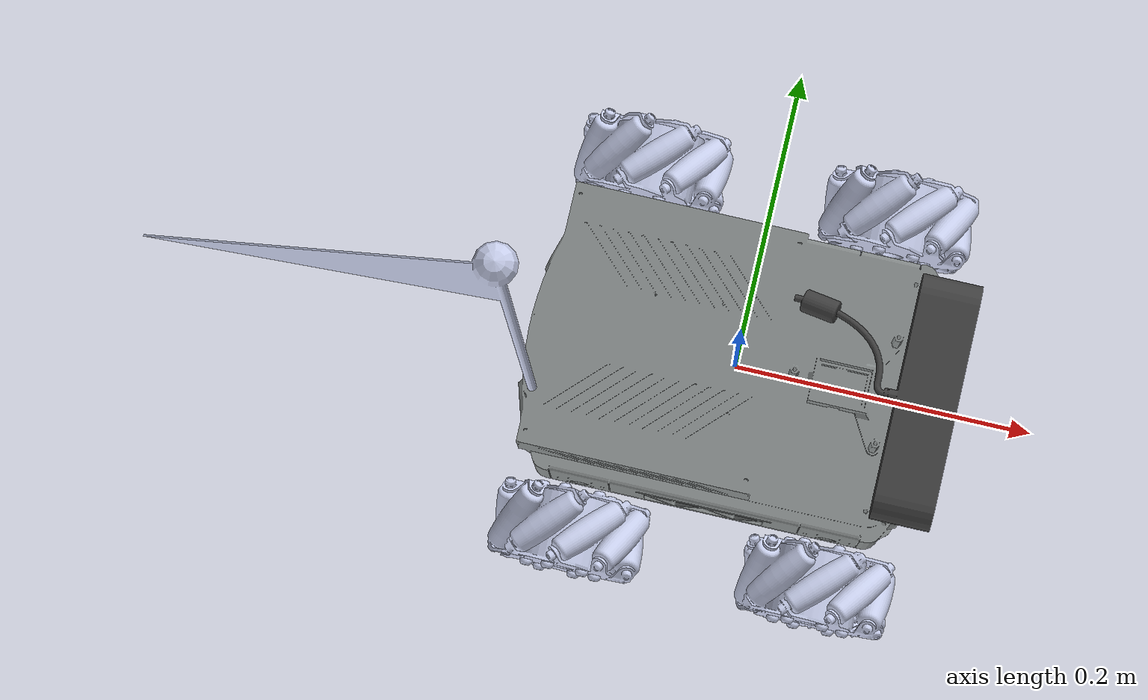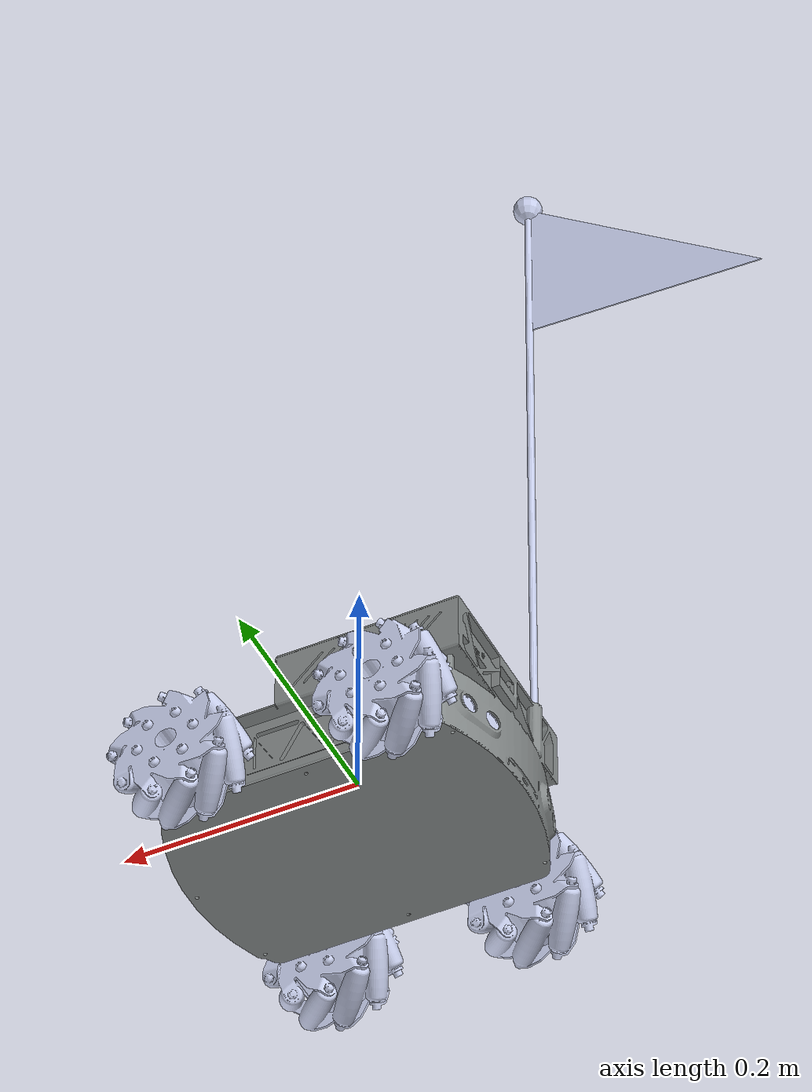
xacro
<?xml version="1.0" encoding="utf-8"?>
<robot
  name="robot_base" xmlns:xacro="http://www.ros.org/wiki/xacro">
  <xacro:property name="radius" value="0.055" />
  <xacro:property name="length" value="0.05" />
  <xacro:property name="wheel_orientation" value="1 0 0" />
  <xacro:property name="collision_transform" value="0 1.57079632679 1.57079632679" />

  <link
    name="base_link">
    <inertial>
      <origin
        xyz="-0.00910410219928872 -9.31202386654388E-05 -0.00269627899619879"
        rpy="0 0 0" />
      <mass
        value="2.54161575728203" />
      <inertia
        ixx="0.00900908568706438"
        ixy="-1.49036665189052E-06"
        ixz="0.000180180089420441"
        iyy="0.0120513643006957"
        iyz="-7.98162115966032E-07"
        izz="0.0202435224080604" />
    </inertial>
    <visual>
      <origin
        xyz="0 0 0"
        rpy="0 0 0" />
      <geometry>
        <mesh
          filename="package://mirte_description/meshes/base_link.STL" />
      </geometry>
      <material
        name="">
        <color
          rgba="0.529411764705882 0.549019607843137 0.549019607843137 1" />
      </material>
    </visual>
    <collision>
      <origin
        xyz="0 0 0"
        rpy="0 0 0" />
      <geometry>
        <mesh
          filename="package://mirte_description/meshes/base_link.STL" />
      </geometry>
    </collision>
  </link>

  <link
    name="front_left_wheel_link">
    <inertial>
      <origin
        xyz="-1.12107378935633E-10 6.41072041116797E-05 2.92491780795601E-10"
        rpy="0 0 0" />
      <mass
        value="0.266614983225976" />
      <inertia
        ixx="8.05457942774812E-05"
        ixy="-1.2260463258983E-14"
        ixz="1.9673439489928E-15"
        iyy="9.31956038960015E-05"
        iyz="-9.68884941818333E-15"
        izz="8.05457942705124E-05" />
    </inertial>
    <visual>
      <origin
        xyz="0 0 0"
        rpy="0 0 0" />
      <geometry>
        <mesh
          filename="package://mirte_description/meshes/front_left_wheel_link.STL" />
      </geometry>
      <material
        name="">
        <color
          rgba="0.792156862745098 0.819607843137255 0.933333333333333 1" />
      </material>
    </visual>
    <collision>
      <origin
        xyz="0 0 0"
        rpy="${collision_transform}" />
      <geometry>
        <cylinder radius="${radius}" length="${length}" />
      </geometry>
    </collision>
  </link>
  <joint
    name="front_left_wheel_joint"
    type="continuous">
    <origin
      xyz="0.085 0.128 -0.0454999999999998"
      rpy="0 0 0" />
    <parent
      link="base_link" />
    <child
      link="front_left_wheel_link" />
    <axis
      xyz="0 1 0" />
  </joint>
  <link
    name="front_right_wheel_link">
    <inertial>
      <origin
        xyz="-1.9000166717742E-10 6.41072041136226E-05 2.1252127835325E-10"
        rpy="0 0 0" />
      <mass
        value="0.266614983226051" />
      <inertia
        ixx="8.05457942757E-05"
        ixy="-7.69167351689639E-14"
        ixz="-4.58661949809919E-15"
        iyy="9.31956038947893E-05"
        iyz="-9.60111009267714E-15"
        izz="8.05457942710754E-05" />
    </inertial>
    <visual>
      <origin
        xyz="0 0 0"
        rpy="0 0 0" />
      <geometry>
        <mesh
          filename="package://mirte_description/meshes/front_right_wheel_link.STL" />
      </geometry>
      <material
        name="">
        <color
          rgba="0.792156862745098 0.819607843137255 0.933333333333333 1" />
      </material>
    </visual>
    <collision>
      <origin
        xyz="0 0 0"
        rpy="${collision_transform}" />
      <geometry>
        <cylinder radius="${radius}" length="${length}" />
      </geometry>
    </collision>
  </link>
  <joint
    name="front_right_wheel_joint"
    type="continuous">
    <origin
      xyz="0.085 -0.128 -0.0454999999999999"
      rpy="0 0 0" />
    <parent
      link="base_link" />
    <child
      link="front_right_wheel_link" />
    <axis
      xyz="0 1 0" />
  </joint>
  <link
    name="rear_left_wheel_link">
    <inertial>
      <origin
        xyz="-1.90001639421844E-10 6.41072041137336E-05 2.12521299169932E-10"
        rpy="0 0 0" />
      <mass
        value="0.266614983226051" />
      <inertia
        ixx="8.05457942756755E-05"
        ixy="-7.6904280182912E-14"
        ixz="-4.57395497910921E-15"
        iyy="9.31956038947575E-05"
        iyz="-9.59312938568377E-15"
        izz="8.05457942710471E-05" />
    </inertial>
    <visual>
      <origin
        xyz="0 0 0"
        rpy="0 0 0" />
      <geometry>
        <mesh
          filename="package://mirte_description/meshes/rear_left_wheel_link.STL" />
      </geometry>
      <material
        name="">
        <color
          rgba="0.792156862745098 0.819607843137255 0.933333333333333 1" />
      </material>
    </visual>
    <collision>
      <origin
        xyz="0 0 0"
        rpy="${collision_transform}" />
      <geometry>
        <cylinder radius="${radius}" length="${length}" />
      </geometry>
    </collision>
  </link>
  <joint
    name="rear_left_wheel_joint"
    type="continuous">
    <origin
      xyz="-0.0849999999999993 0.128 -0.045500000000002"
      rpy="0 0 0" />
    <parent
      link="base_link" />
    <child
      link="rear_left_wheel_link" />
    <axis
      xyz="0 1 0" />
  </joint>
  <link
    name="rear_right_wheel_link">
    <inertial>
      <origin
        xyz="-1.00091421262327E-10 6.41072041089319E-05 2.94731128391845E-10"
        rpy="0 0 0" />
      <mass
        value="0.26661498322592" />
      <inertia
        ixx="8.05457942778204E-05"
        ixy="-1.26520007959427E-14"
        ixz="4.82090522465438E-17"
        iyy="9.3195603896201E-05"
        iyz="-1.75713132076445E-14"
        izz="8.05457942703286E-05" />
    </inertial>
    <visual>
      <origin
        xyz="0 0 0"
        rpy="0 0 0" />
      <geometry>
        <mesh
          filename="package://mirte_description/meshes/rear_right_wheel_link.STL" />
      </geometry>
      <material
        name="">
        <color
          rgba="0.792156862745098 0.819607843137255 0.933333333333333 1" />
      </material>
    </visual>
    <collision>
      <origin
        xyz="0 0 0"
        rpy="${collision_transform}" />
      <geometry>
        <cylinder radius="${radius}" length="${length}" />
      </geometry>
    </collision>
  </link>
  <joint
    name="rear_right_wheel_joint"
    type="continuous">
    <origin
      xyz="-0.0850000000000007 -0.128 -0.0454999999999994"
      rpy="0 0 0" />
    <parent
      link="base_link" />
    <child
      link="rear_right_wheel_link" />
    <axis
      xyz="0 1 0" />
  </joint>
  <link
    name="camera_link">
    <inertial>
      <origin
        xyz="-0.0222605569788096 0.00132191548038024 -0.00039200722199239"
        rpy="0 0 0" />
      <mass
        value="0.188133920336356" />
      <inertia
        ixx="0.00040830401695793"
        ixy="1.91366259472818E-05"
        ixz="-4.27256160719641E-06"
        iyy="6.91459456639027E-05"
        iyz="2.54332844338714E-06"
        izz="0.000449074814854817" />
    </inertial>
    <visual>
      <origin
        xyz="0 0 0"
        rpy="0 0 0" />
      <geometry>
        <mesh
          filename="package://mirte_description/meshes/camera_link.STL" />
      </geometry>
      <material
        name="">
        <color
          rgba="0.250980392156863 0.250980392156863 0.250980392156863 1" />
      </material>
    </visual>
    <collision>
      <origin
        xyz="0 0 0"
        rpy="0 0 0" />
      <geometry>
        <mesh
          filename="package://mirte_description/meshes/camera_link.STL" />
      </geometry>
    </collision>
  </link>
  <joint
    name="camera_joint"
    type="fixed">
    <origin
      xyz="0.146658788505756 0 0.0426999999999987"
      rpy="0 0 0" />
    <parent
      link="base_link" />
    <child
      link="camera_link" />
    <axis
      xyz="0 0 0" />
  </joint>
  <link
    name="lidar_link">
    <inertial>
      <origin
        xyz="-3.97749846947626E-10 -9.543860877243E-05 -0.0118651639742243"
        rpy="0 0 0" />
      <mass
        value="0.100511981883415" />
      <inertia
        ixx="3.39518063996325E-05"
        ixy="-2.92284267049194E-13"
        ixz="1.62111209504698E-12"
        iyy="3.44778101670497E-05"
        iyz="-1.1815579647801E-07"
        izz="4.1935853096105E-05" />
    </inertial>
    <visual>
      <origin
        xyz="0 0 0"
        rpy="0 0 0" />
      <geometry>
        <mesh
          filename="package://mirte_description/meshes/lidar_link.STL" />
      </geometry>
      <material
        name="">
        <color
          rgba="0.501960784313725 0.501960784313725 0.501960784313725 1" />
      </material>
    </visual>
    <collision>
      <origin
        xyz="0 0 0"
        rpy="0 0 0" />
      <geometry>
        <mesh
          filename="package://mirte_description/meshes/lidar_link.STL" />
      </geometry>
    </collision>
  </link>
  <joint
    name="lidar_joint"
    type="fixed">
    <origin
      xyz="0.1005 0 0.0072113248654052"
      rpy="0 0 0" />
    <parent
      link="base_link" />
    <child
      link="lidar_link" />
    <axis
      xyz="0 0 0" />
  </joint>
  <link
    name="front_right_ultrasound_link">
    <inertial>
      <origin
        xyz="4.30733527063271E-05 0.00367564883489799 6.9913657863175E-05"
        rpy="0 0 0" />
      <mass
        value="0.00383513951999244" />
      <inertia
        ixx="1.59365628586767E-07"
        ixy="8.54250314742398E-10"
        ixz="-3.40905422018182E-09"
        iyy="7.6875152346034E-07"
        iyz="-2.65062440645524E-09"
        izz="7.26221149125632E-07" />
    </inertial>
    <visual>
      <origin
        xyz="0 0 0"
        rpy="0 0 0" />
      <geometry>
        <mesh
          filename="package://mirte_description/meshes/front_right_ultrasound_link.STL" />
      </geometry>
      <material
        name="">
        <color
          rgba="0.792156862745098 0.819607843137255 0.933333333333333 1" />
      </material>
    </visual>
    <collision>
      <origin
        xyz="0 0 0"
        rpy="0 0 0" />
      <geometry>
        <mesh
          filename="package://mirte_description/meshes/front_right_ultrasound_link.STL" />
      </geometry>
    </collision>
  </link>
  <joint
    name="front_right_ultrasound_joint"
    type="fixed">
    <origin
      xyz="0.120282421780502 -0.05297775289576 -0.031"
      rpy="0 0 -1.86750229963393" />
    <parent
      link="base_link" />
    <child
      link="front_right_ultrasound_link" />
    <axis
      xyz="0 0 0" />
  </joint>
  <link
    name="front_left_ultrasound_link">
    <inertial>
      <origin
        xyz="-4.30733527062924E-05 -0.00367564883489804 6.99136578631437E-05"
        rpy="0 0 0" />
      <mass
        value="0.00383513951999246" />
      <inertia
        ixx="1.59365628586768E-07"
        ixy="8.54250314742599E-10"
        ixz="3.40905422018193E-09"
        iyy="7.68751523460337E-07"
        iyz="2.65062440645509E-09"
        izz="7.26221149125628E-07" />
    </inertial>
    <visual>
      <origin
        xyz="0 0 0"
        rpy="0 0 0" />
      <geometry>
        <mesh
          filename="package://mirte_description/meshes/front_left_ultrasound_link.STL" />
      </geometry>
      <material
        name="">
        <color
          rgba="0.792156862745098 0.819607843137255 0.933333333333333 1" />
      </material>
    </visual>
    <collision>
      <origin
        xyz="0 0 0"
        rpy="0 0 0" />
      <geometry>
        <mesh
          filename="package://mirte_description/meshes/front_left_ultrasound_link.STL" />
      </geometry>
    </collision>
  </link>
  <joint
    name="front_left_ultrasound_joint"
    type="fixed">
    <origin
      xyz="0.120282421780502 0.05297775289576 -0.031"
      rpy="0 0 1.86750229963393" />
    <parent
      link="base_link" />
    <child
      link="front_left_ultrasound_link" />
    <axis
      xyz="0 0 0" />
  </joint>
  <link
    name="rear_left_ultrasound_link">
    <inertial>
      <origin
        xyz="4.30733527062785E-05 0.00367564883489802 6.99136578631784E-05"
        rpy="0 0 0" />
      <mass
        value="0.00383513951999244" />
      <inertia
        ixx="1.59365628586767E-07"
        ixy="8.54250314742249E-10"
        ixz="-3.40905422018205E-09"
        iyy="7.68751523460339E-07"
        iyz="-2.65062440645536E-09"
        izz="7.26221149125631E-07" />
    </inertial>
    <visual>
      <origin
        xyz="0 0 0"
        rpy="0 0 0" />
      <geometry>
        <mesh
          filename="package://mirte_description/meshes/rear_left_ultrasound_link.STL" />
      </geometry>
      <material
        name="">
        <color
          rgba="0.792156862745098 0.819607843137255 0.933333333333333 1" />
      </material>
    </visual>
    <collision>
      <origin
        xyz="0 0 0"
        rpy="0 0 0" />
      <geometry>
        <mesh
          filename="package://mirte_description/meshes/rear_left_ultrasound_link.STL" />
      </geometry>
    </collision>
  </link>
  <joint
    name="rear_left_ultrasound_joint"
    type="fixed">
    <origin
      xyz="-0.119187021096338 0.0565606470918482 -0.0309999999999999"
      rpy="0 0 1.27409035395586" />
    <parent
      link="base_link" />
    <child
      link="rear_left_ultrasound_link" />
    <axis
      xyz="0 0 0" />
  </joint>
  <link
    name="rear_right_ultrasound_link">
    <inertial>
      <origin
        xyz="4.30733527062716E-05 0.00367564883489802 6.99136578631541E-05"
        rpy="0 0 0" />
      <mass
        value="0.00383513951999245" />
      <inertia
        ixx="1.59365628586768E-07"
        ixy="8.54250314743049E-10"
        ixz="-3.40905422018174E-09"
        iyy="7.68751523460337E-07"
        iyz="-2.65062440645516E-09"
        izz="7.26221149125628E-07" />
    </inertial>
    <visual>
      <origin
        xyz="0 0 0"
        rpy="0 0 0" />
      <geometry>
        <mesh
          filename="package://mirte_description/meshes/rear_right_ultrasound_link.STL" />
      </geometry>
      <material
        name="">
        <color
          rgba="0.792156862745098 0.819607843137255 0.933333333333333 1" />
      </material>
    </visual>
    <collision>
      <origin
        xyz="0 0 0"
        rpy="0 0 0" />
      <geometry>
        <mesh
          filename="package://mirte_description/meshes/rear_right_ultrasound_link.STL" />
      </geometry>
    </collision>
  </link>
  <joint
    name="rear_right_ultrasound_joint"
    type="fixed">
    <origin
      xyz="-0.119187021096338 -0.0565606470918482 -0.031"
      rpy="0 0 1.86750229963393" />
    <parent
      link="base_link" />
    <child
      link="rear_right_ultrasound_link" />
    <axis
      xyz="0 0 0" />
  </joint>
  <link
    name="flag_link">
    <inertial>
      <origin
        xyz="-0.024941 -0.00081775 0.13848"
        rpy="0 0 0" />
      <mass
        value="0" />
      <inertia
        ixx="0.0010881"
        ixy="-2.8836E-06"
        ixz="6.0642E-05"
        iyy="0.001158"
        iyz="1.546E-06"
        izz="7.0587E-05" />
    </inertial>
    <visual>
      <origin
        xyz="0 0 0"
        rpy="0 0 0" />
      <geometry>
        <mesh
          filename="package://mirte_description/meshes/flag_link.STL" />
      </geometry>
      <material
        name="">
        <color
          rgba="0.79608 0.82353 0.93725 1" />
      </material>
    </visual>
    <collision>
      <origin
        xyz="0 0 0"
        rpy="0 0 0" />
      <geometry>
        <mesh
          filename="package://mirte_description/meshes/flag_link.STL" />
      </geometry>
    </collision>
  </link>
  <joint
    name="flag_joint"
    type="fixed">
    <origin
      xyz="-0.12479 -0.0502 0.31705"
      rpy="0 0 0" />
    <parent
      link="base_link" />
    <child
      link="flag_link" />
    <axis
      xyz="0 0 0" />
  </joint>

  <transmission name="front_left_wheel_trans">
      <type>transmission_interface/SimpleTransmission</type>
      <joint name="front_left_wheel_joint">
        <hardwareInterface>hardware_interface/VelocityJointInterface</hardwareInterface>
      </joint>
      <actuator name="front_left_wheel_actuator">
        <mechanicalReduction>1</mechanicalReduction>
      </actuator>
  </transmission>

  <transmission name="front_right_wheel_trans">
      <type>transmission_interface/SimpleTransmission</type>
      <joint name="front_right_wheel_joint">
        <hardwareInterface>hardware_interface/VelocityJointInterface</hardwareInterface>
      </joint>
      <actuator name="front_right_wheel_actuator">
        <mechanicalReduction>1</mechanicalReduction>
      </actuator>
  </transmission>

  <transmission name="rear_right_wheel_trans">
      <type>transmission_interface/SimpleTransmission</type>
      <joint name="rear_right_wheel_joint">
        <hardwareInterface>hardware_interface/VelocityJointInterface</hardwareInterface>
      </joint>
      <actuator name="rear_right_wheel_actuator">
        <mechanicalReduction>1</mechanicalReduction>
      </actuator>
    </transmission>

  <transmission name="rear_left_wheel_trans">
      <type>transmission_interface/SimpleTransmission</type>
      <joint name="rear_left_wheel_joint">
        <hardwareInterface>hardware_interface/VelocityJointInterface</hardwareInterface>
      </joint>
      <actuator name="rear_left_wheel_actuator">
        <mechanicalReduction>1</mechanicalReduction>
      </actuator>
    </transmission>

</robot>
